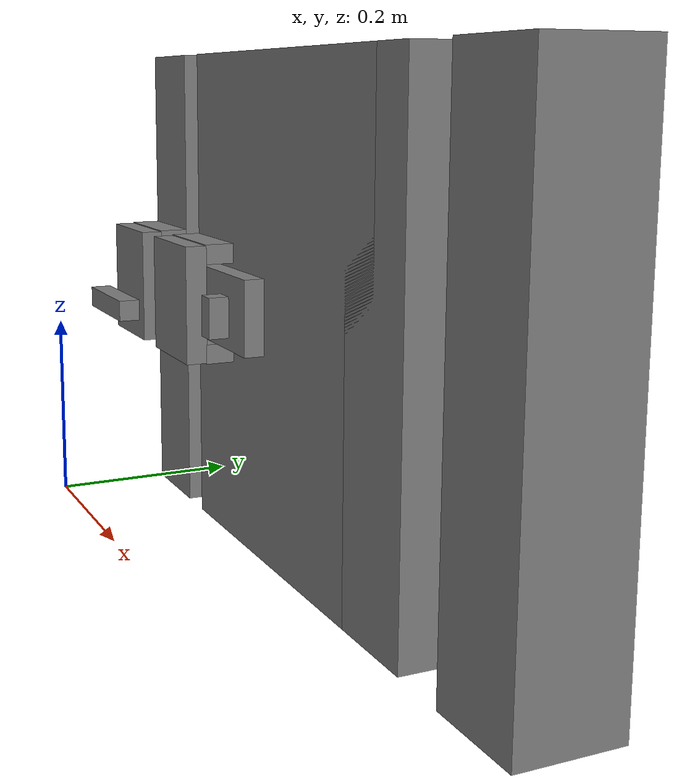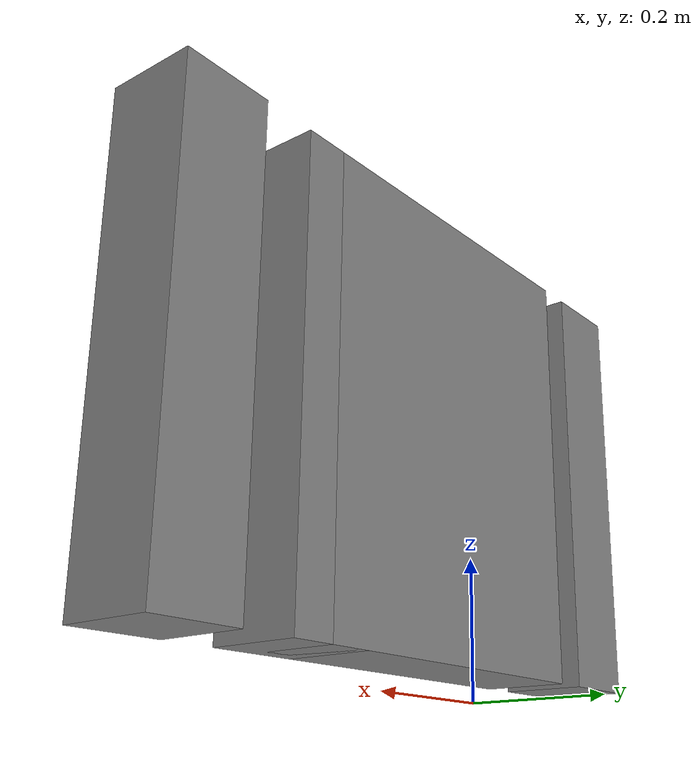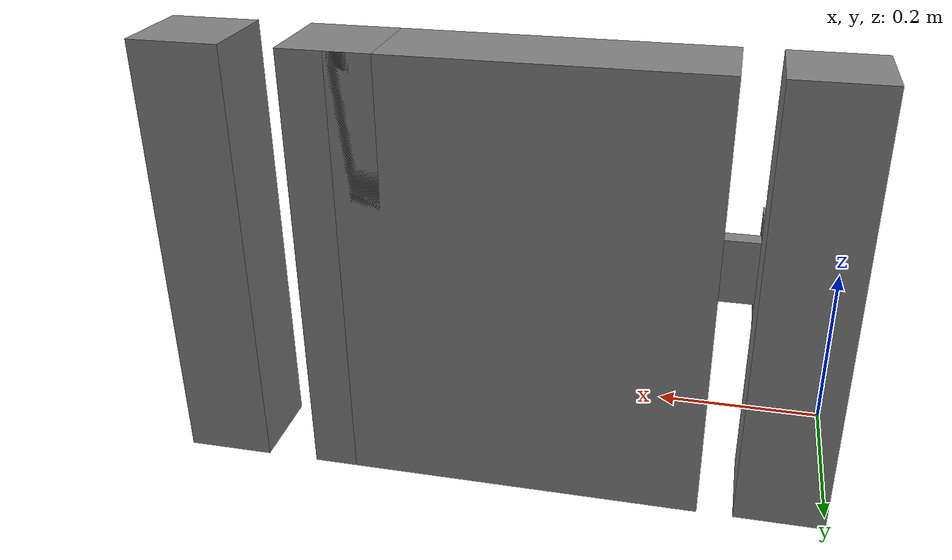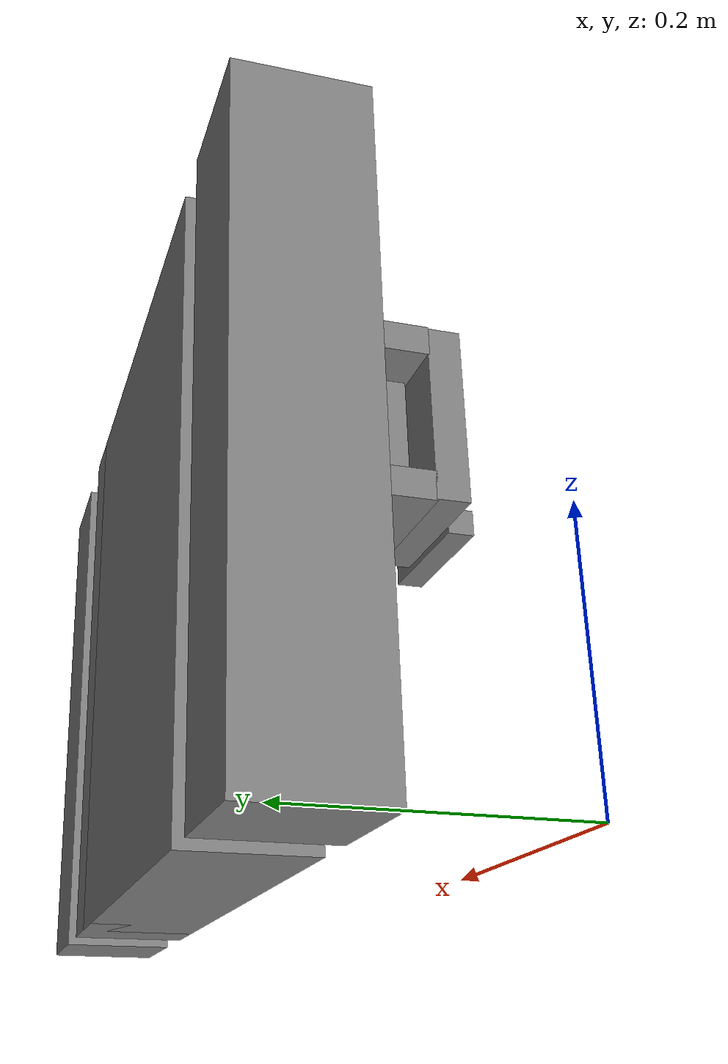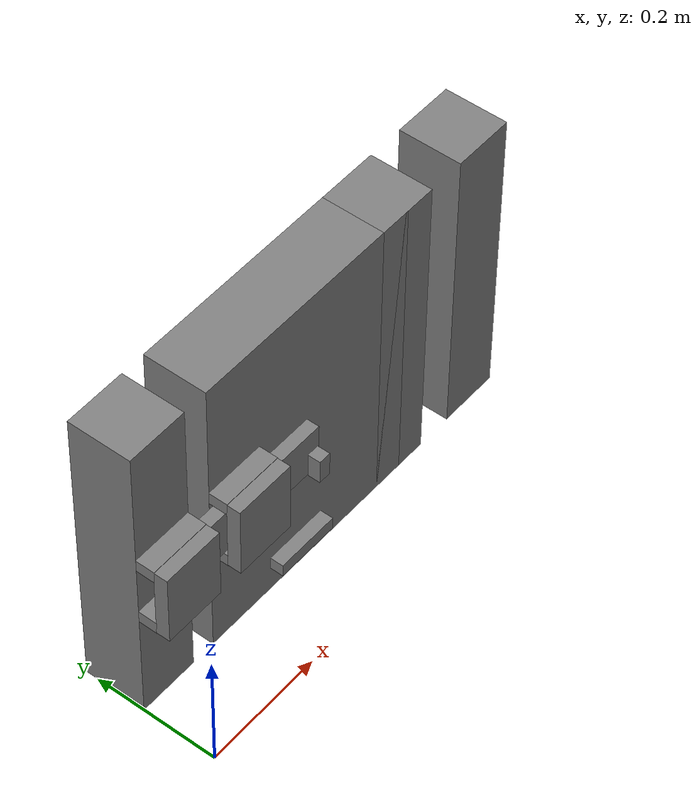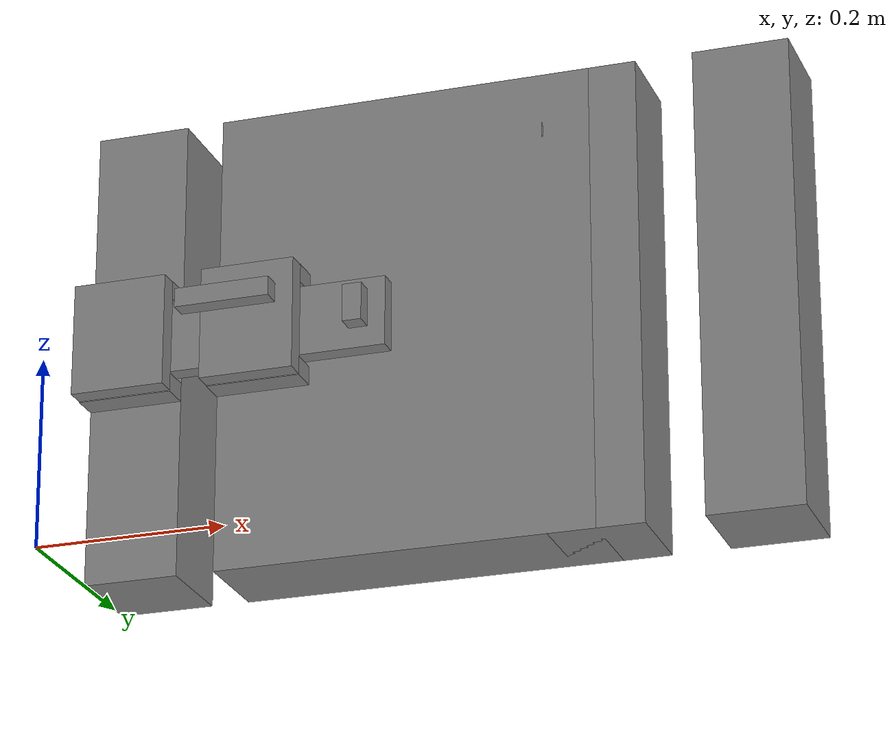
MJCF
<?xml version="1.0" encoding="utf-8"?>
<!-- from https://github.com/openai/mujoco-py/blob/master/xmls/door.xml -->
<mujoco>
  <compiler angle="radian" eulerseq="xyz" coordinate="local"></compiler>
  <worldbody>
    <body pos="0 0 0">
      <inertial diaginertia="1 1 1" mass="1" pos="0 0 0"></inertial>
      <body name="door" pos="0.34 0.17 0.25">
        <inertial diaginertia="0.0914 0.0522 0.0437" mass="2.4346" pos="0.0297 -0.0015 0" quat="0.7011 0 0 0.7131"></inertial>
        <joint armature="0.01" axis="0 0 1" damping="1" frictionloss="0.1" limited="true" name="door_hinge" pos="0.25 0 0" range="0 1.57" type="hinge"></joint>
        <geom condim="3" friction="1 1 1" size="0.2 0.05 0.25" type="box"></geom>
        <geom pos="0.2 0 0" size="0.05 0.05 0.25" type="box"></geom>
        <geom pos="-0.15 -0.065 -0.051" size="0.05 0.015 0.01" type="box"></geom>
        <geom pos="-0.15 -0.065 0.051" size="0.05 0.015 0.01" type="box"></geom>
        <geom pos="-0.15 -0.09 0" size="0.05 0.011 0.06" type="box"></geom>
        <geom pos="-0.15 -0.16 0" size="0.01 0.01 0.05" type="box" euler="0 -1.5708 0"></geom>
        <body name="latch" pos="-0.16 -0.065 0">
          <inertial diaginertia="0.0038 0.0036 0.0002" mass="0.4657" pos="0.0042 -0.001 0" quat="0.504 0.504 0.496 0.496"></inertial>
          <geom condim="1" size="0.15 0.01 0.0375" type="box"></geom>
          <geom pos="0.125 -0.03 0" size="0.01 0.01 0.02" type="box"></geom>
          <joint axis="1 0 0" frictionloss="0.1" limited="true" name="latch_joint" pos="0 0 0" range="0 0.15" type="slide"></joint>
        </body>
      </body>
      <body name="frame" pos="0.05 0.17 0.25">
        <geom condim="3" pos="0.65 0 0" size="0.05 0.05 0.25" type="box"></geom>
        <geom condim="3" size="0.05 0.05 0.25" type="box"></geom>
        <geom pos="0 -0.065 -0.051" size="0.05 0.015 0.01" type="box"></geom>
        <geom pos="0 -0.065 0.051" size="0.05 0.015 0.01" type="box"></geom>
        <geom pos="0 -0.09 0" size="0.05 0.011 0.06" type="box"></geom>
      </body>
    </body>
  </worldbody>
</mujoco>
